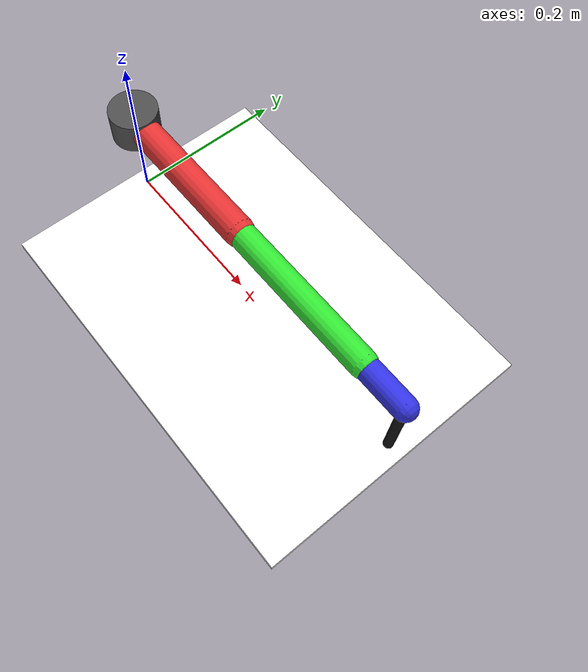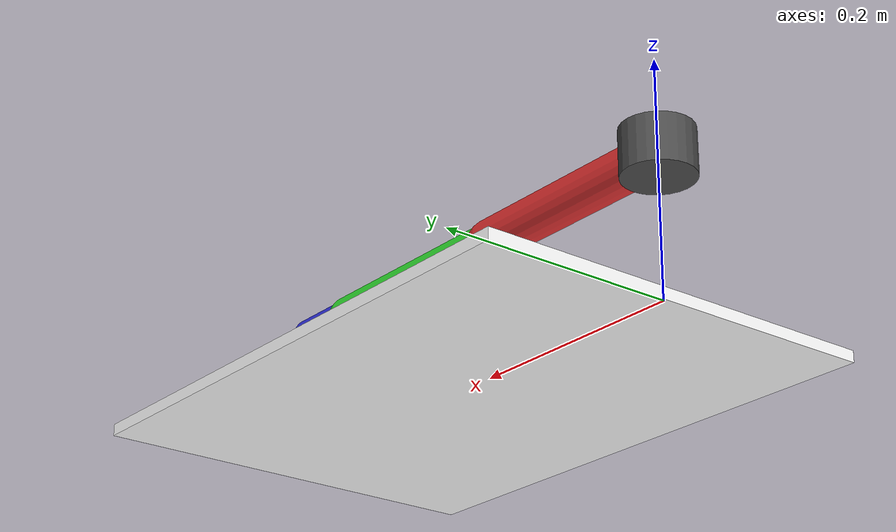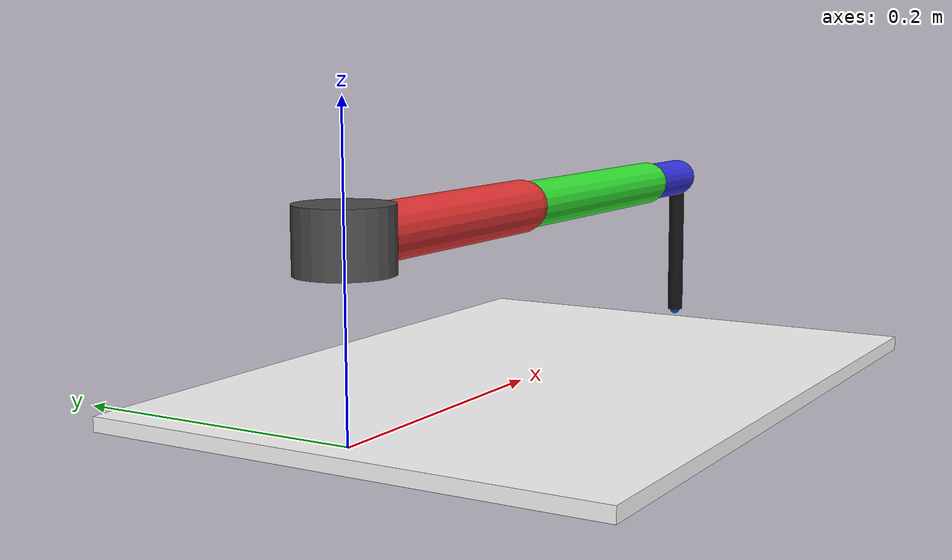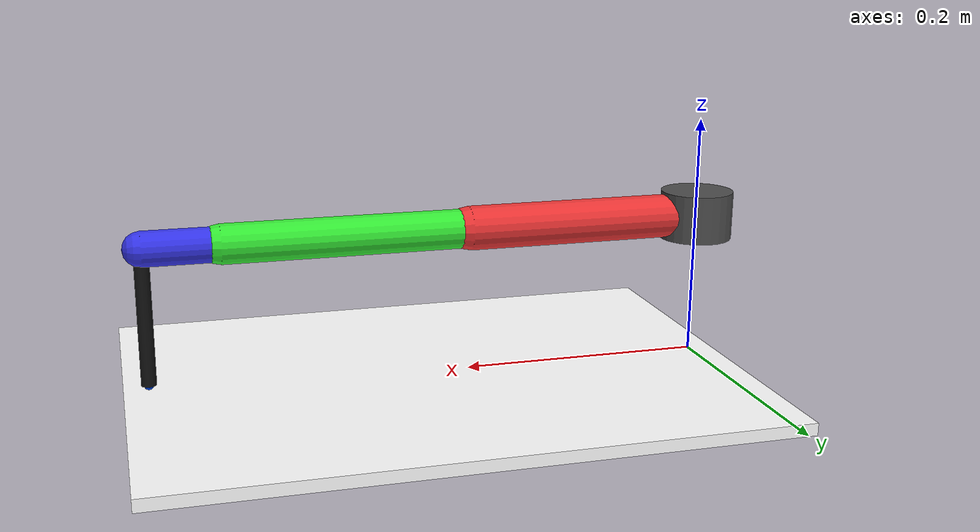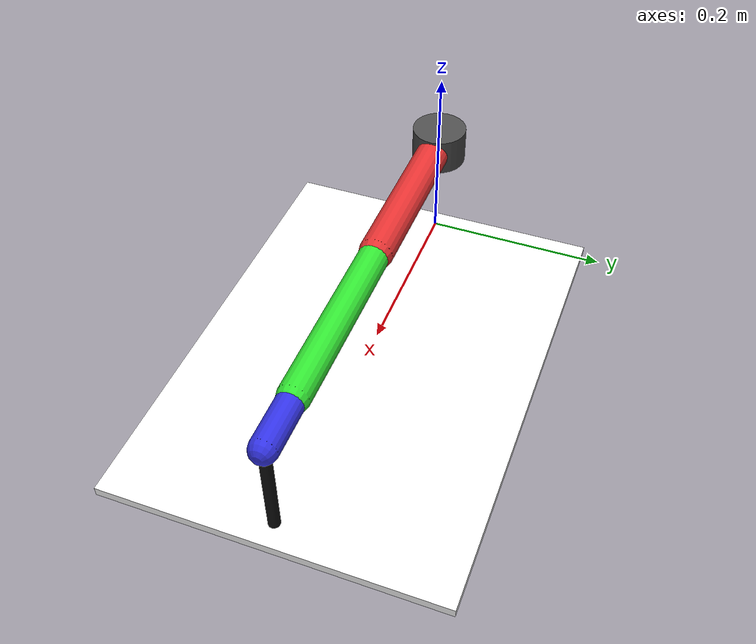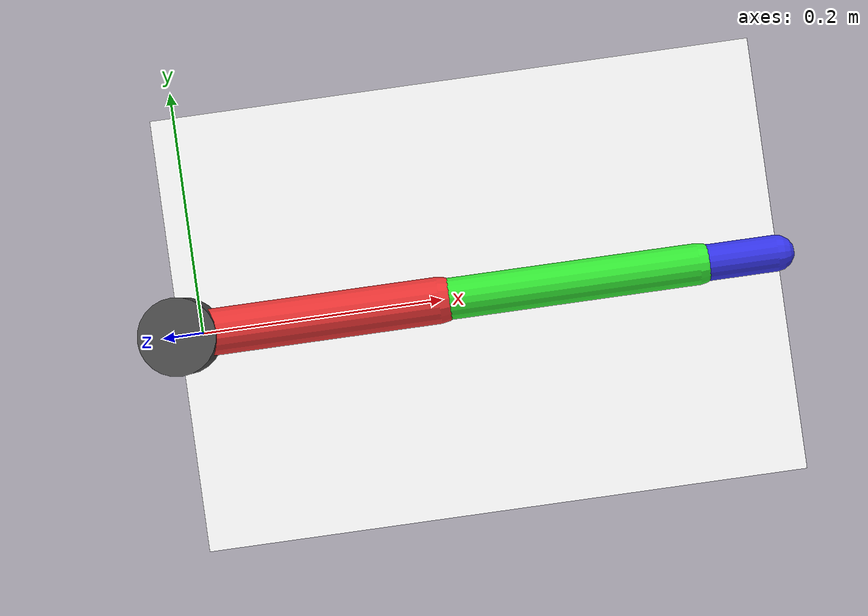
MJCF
<mujoco model="draw_arm">
  <compiler angle="radian" coordinate="local" inertiafromgeom="true"/>

  <option timestep="0.002" gravity="0 0 -9.81" integrator="implicitfast"/>
  <size njmax="2000" nconmax="2000"/>

  <default>
    <!-- disable collision by default -->
    <geom contype="0" conaffinity="0" density="300"/>
    <joint damping="1" frictionloss="0.05"/>
  </default>

  <asset>
    <texture name="grid" type="2d" builtin="checker"
             rgb1="0.90 0.90 0.90" rgb2="0.97 0.97 0.97"
             width="256" height="256"/>
    <material name="mat_canvas" texture="grid" texrepeat="6 6" rgba="1 1 1 1"/>
  </asset>

  <worldbody>
    <!-- Visual canvas (non-colliding) -->
    <body name="table" pos="0 0 0">
      <geom name="canvas" type="box" size="0.25 0.18 0.005"
            pos="0.23 0 -0.005" material="mat_canvas" rgba="1 1 1 1"
            contype="0" conaffinity="0"/>
    </body>

    <!-- Planar 3-link arm -->
    <body name="base" pos="0 0 0.12">
      <geom name="base_geom" type="cylinder" size="0.03 0.02" rgba="0.30 0.30 0.30 1"/>

      <body name="link1" pos="0 0 0">
        <joint name="shoulder" type="hinge" axis="0 0 1"
               limited="true" range="-3.1416 3.1416"/>
        <geom name="link1_geom" type="capsule" fromto="0 0 0 0.20 0 0"
              size="0.018" rgba="0.90 0.20 0.20 1"/>

        <body name="link2" pos="0.20 0 0">
          <joint name="elbow" type="hinge" axis="0 0 1"
                 limited="true" range="-3.1416 3.1416"/>
          <geom name="link2_geom" type="capsule" fromto="0 0 0 0.20 0 0"
                size="0.016" rgba="0.20 0.90 0.20 1"/>

          <body name="link3" pos="0.20 0 0">
            <joint name="wrist" type="hinge" axis="0 0 1" damping="0.6"
                   limited="true" range="-3.1416 3.1416"/>
            <geom name="link3_geom" type="capsule" fromto="0 0 0 0.06 0 0"
                  size="0.014" rgba="0.20 0.20 0.90 1"/>

            <!-- Pen slide (z) -->
            <body name="pen" pos="0.06 0 0">
              <joint name="pen_z" type="slide" axis="0 0 1" damping="8"
                     limited="true" range="-0.02 0.05"/>

              <geom name="pen_body" type="cylinder" size="0.006 0.055"
                    pos="0 0 -0.055" rgba="0.07 0.07 0.07 1"/>

              <!-- Tip sphere (non-colliding) -->
              <geom name="pen_tip" type="sphere" size="0.003"
                    pos="0 0 -0.11" rgba="0 0 0 1" contype="0" conaffinity="0"/>

              <site name="pen_tip_site" pos="0 0 -0.11" size="0.004" rgba="0 0.3 1 1"/>
            </body>
          </body>
        </body>
      </body>
    </body>
  </worldbody>

  <!-- Home pose (qpos) -->
  <keyframe>
    <key name="home" qpos="0 0.8 -0.8 0.03"/>
  </keyframe>
</mujoco>
